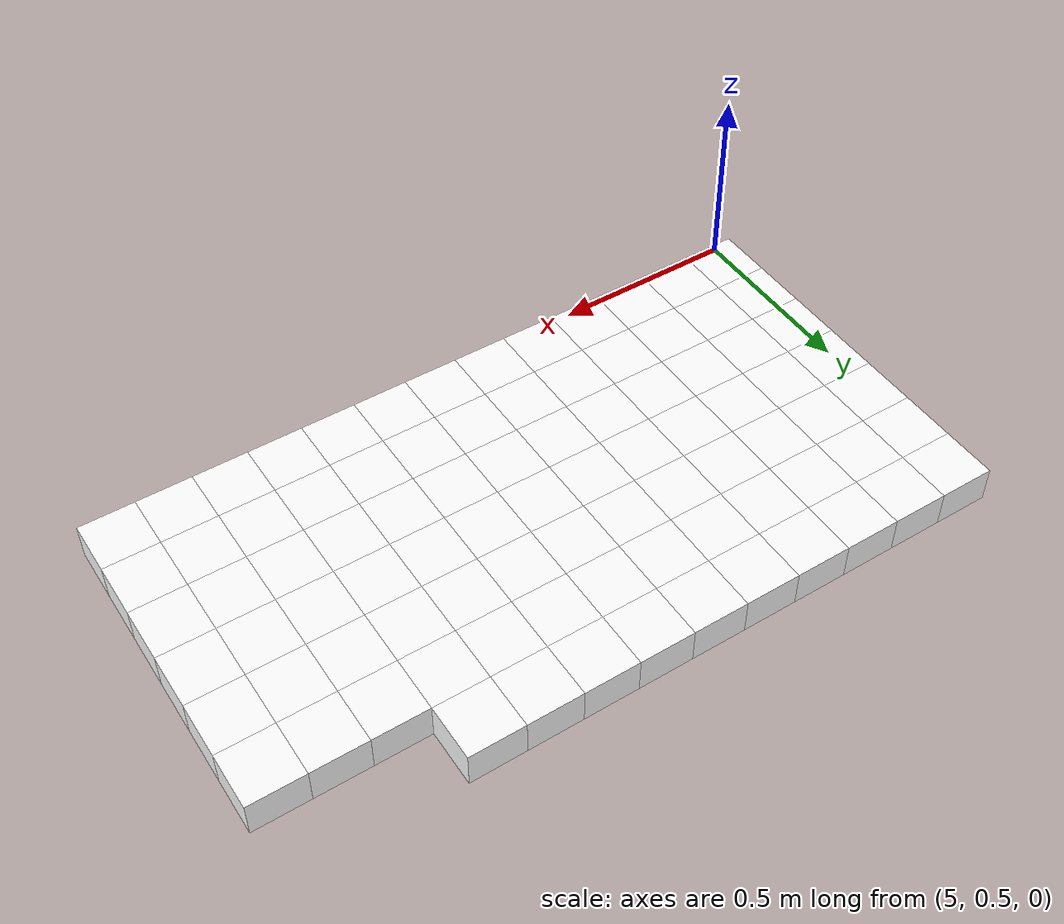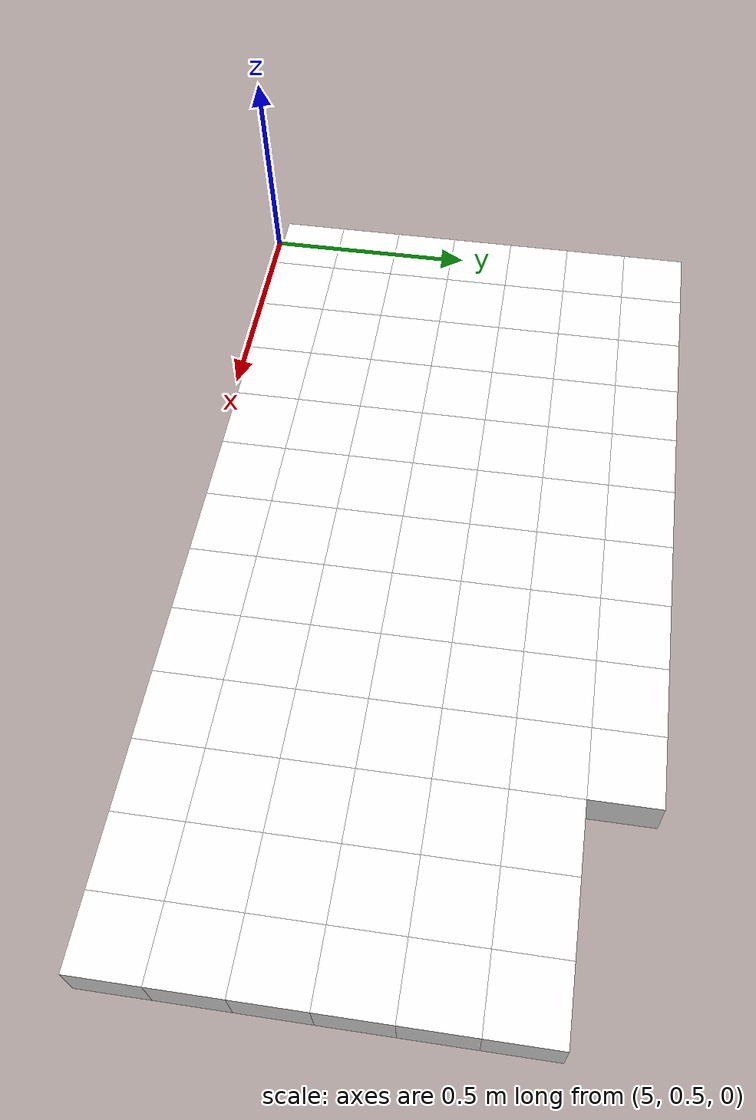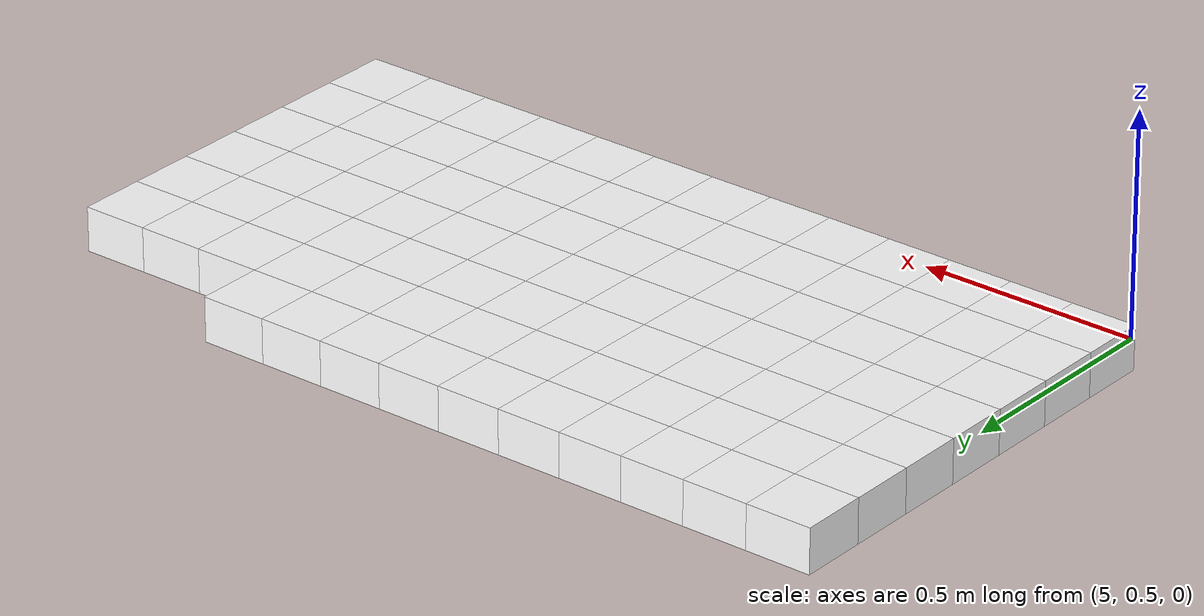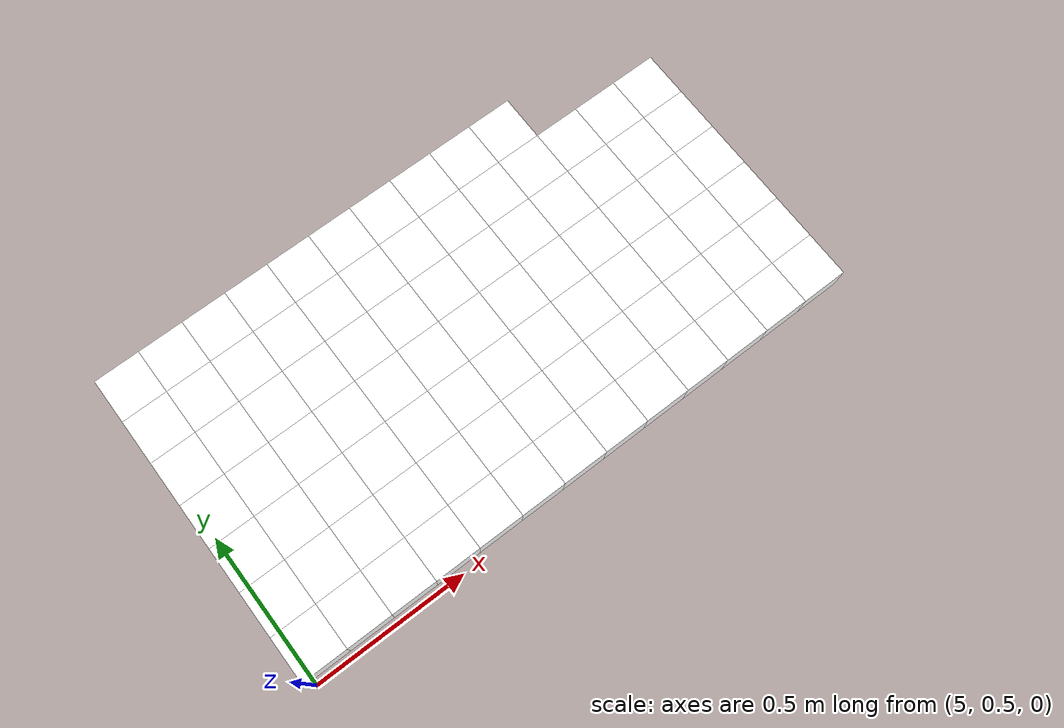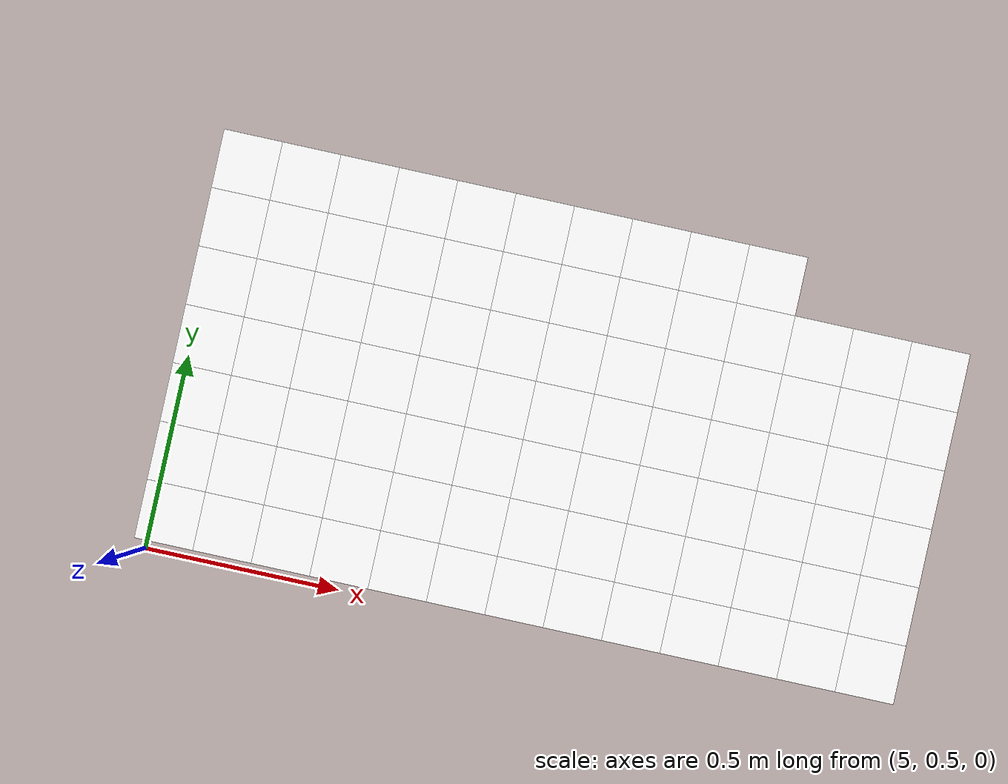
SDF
<sdf version="1.7">
 <world name="default">
  <include><uri>model://sun</uri></include>
  <model name="static_environment">
   <static>true</static>
   <link name="region_571">
    <pose>5.0500000000000025 0.6 0.0 0.0 0.0 0.0</pose>
    <collision name="region_571_collision">
     <geometry><box><size>0.15 0.15 0.1</size></box></geometry>
     <surface><friction><ode><mu>1.0</mu><mu2>1.0</mu2></ode></friction></surface>
    </collision>
    <visual name="region_571_visual">
     <geometry><box><size>0.15 0.15 0.1</size></box></geometry>
     <material><ambient>1.0 1.0 1.0 1.0</ambient><diffuse>1.0 1.0 1.0 1.0</diffuse></material>
    </visual>
   </link>
   <link name="region_572">
    <pose>5.200000000000003 0.6 0.0 0.0 0.0 0.0</pose>
    <collision name="region_572_collision">
     <geometry><box><size>0.15 0.15 0.1</size></box></geometry>
     <surface><friction><ode><mu>1.0</mu><mu2>1.0</mu2></ode></friction></surface>
    </collision>
    <visual name="region_572_visual">
     <geometry><box><size>0.15 0.15 0.1</size></box></geometry>
     <material><ambient>1.0 1.0 1.0 1.0</ambient><diffuse>1.0 1.0 1.0 1.0</diffuse></material>
    </visual>
   </link>
   <link name="region_573">
    <pose>5.350000000000003 0.6 0.0 0.0 0.0 0.0</pose>
    <collision name="region_573_collision">
     <geometry><box><size>0.15 0.15 0.1</size></box></geometry>
     <surface><friction><ode><mu>1.0</mu><mu2>1.0</mu2></ode></friction></surface>
    </collision>
    <visual name="region_573_visual">
     <geometry><box><size>0.15 0.15 0.1</size></box></geometry>
     <material><ambient>1.0 1.0 1.0 1.0</ambient><diffuse>1.0 1.0 1.0 1.0</diffuse></material>
    </visual>
   </link>
   <link name="region_574">
    <pose>5.5000000000000036 0.6 0.0 0.0 0.0 0.0</pose>
    <collision name="region_574_collision">
     <geometry><box><size>0.15 0.15 0.1</size></box></geometry>
     <surface><friction><ode><mu>1.0</mu><mu2>1.0</mu2></ode></friction></surface>
    </collision>
    <visual name="region_574_visual">
     <geometry><box><size>0.15 0.15 0.1</size></box></geometry>
     <material><ambient>1.0 1.0 1.0 1.0</ambient><diffuse>1.0 1.0 1.0 1.0</diffuse></material>
    </visual>
   </link>
   <link name="region_575">
    <pose>5.650000000000004 0.6 0.0 0.0 0.0 0.0</pose>
    <collision name="region_575_collision">
     <geometry><box><size>0.15 0.15 0.1</size></box></geometry>
     <surface><friction><ode><mu>1.0</mu><mu2>1.0</mu2></ode></friction></surface>
    </collision>
    <visual name="region_575_visual">
     <geometry><box><size>0.15 0.15 0.1</size></box></geometry>
     <material><ambient>1.0 1.0 1.0 1.0</ambient><diffuse>1.0 1.0 1.0 1.0</diffuse></material>
    </visual>
   </link>
   <link name="region_576">
    <pose>5.800000000000004 0.6 0.0 0.0 0.0 0.0</pose>
    <collision name="region_576_collision">
     <geometry><box><size>0.15 0.15 0.1</size></box></geometry>
     <surface><friction><ode><mu>1.0</mu><mu2>1.0</mu2></ode></friction></surface>
    </collision>
    <visual name="region_576_visual">
     <geometry><box><size>0.15 0.15 0.1</size></box></geometry>
     <material><ambient>1.0 1.0 1.0 1.0</ambient><diffuse>1.0 1.0 1.0 1.0</diffuse></material>
    </visual>
   </link>
   <link name="region_577">
    <pose>5.950000000000005 0.6 0.0 0.0 0.0 0.0</pose>
    <collision name="region_577_collision">
     <geometry><box><size>0.15 0.15 0.1</size></box></geometry>
     <surface><friction><ode><mu>1.0</mu><mu2>1.0</mu2></ode></friction></surface>
    </collision>
    <visual name="region_577_visual">
     <geometry><box><size>0.15 0.15 0.1</size></box></geometry>
     <material><ambient>1.0 1.0 1.0 1.0</ambient><diffuse>1.0 1.0 1.0 1.0</diffuse></material>
    </visual>
   </link>
   <link name="region_578">
    <pose>6.100000000000005 0.6 0.0 0.0 0.0 0.0</pose>
    <collision name="region_578_collision">
     <geometry><box><size>0.15 0.15 0.1</size></box></geometry>
     <surface><friction><ode><mu>1.0</mu><mu2>1.0</mu2></ode></friction></surface>
    </collision>
    <visual name="region_578_visual">
     <geometry><box><size>0.15 0.15 0.1</size></box></geometry>
     <material><ambient>1.0 1.0 1.0 1.0</ambient><diffuse>1.0 1.0 1.0 1.0</diffuse></material>
    </visual>
   </link>
   <link name="region_579">
    <pose>6.250000000000005 0.6 0.0 0.0 0.0 0.0</pose>
    <collision name="region_579_collision">
     <geometry><box><size>0.15 0.15 0.1</size></box></geometry>
     <surface><friction><ode><mu>1.0</mu><mu2>1.0</mu2></ode></friction></surface>
    </collision>
    <visual name="region_579_visual">
     <geometry><box><size>0.15 0.15 0.1</size></box></geometry>
     <material><ambient>1.0 1.0 1.0 1.0</ambient><diffuse>1.0 1.0 1.0 1.0</diffuse></material>
    </visual>
   </link>
   <link name="region_580">
    <pose>6.400000000000006 0.6 0.0 0.0 0.0 0.0</pose>
    <collision name="region_580_collision">
     <geometry><box><size>0.15 0.15 0.1</size></box></geometry>
     <surface><friction><ode><mu>1.0</mu><mu2>1.0</mu2></ode></friction></surface>
    </collision>
    <visual name="region_580_visual">
     <geometry><box><size>0.15 0.15 0.1</size></box></geometry>
     <material><ambient>1.0 1.0 1.0 1.0</ambient><diffuse>1.0 1.0 1.0 1.0</diffuse></material>
    </visual>
   </link>
   <link name="region_581">
    <pose>6.550000000000006 0.6 0.0 0.0 0.0 0.0</pose>
    <collision name="region_581_collision">
     <geometry><box><size>0.15 0.15 0.1</size></box></geometry>
     <surface><friction><ode><mu>1.0</mu><mu2>1.0</mu2></ode></friction></surface>
    </collision>
    <visual name="region_581_visual">
     <geometry><box><size>0.15 0.15 0.1</size></box></geometry>
     <material><ambient>1.0 1.0 1.0 1.0</ambient><diffuse>1.0 1.0 1.0 1.0</diffuse></material>
    </visual>
   </link>
   <link name="region_582">
    <pose>6.700000000000006 0.6 0.0 0.0 0.0 0.0</pose>
    <collision name="region_582_collision">
     <geometry><box><size>0.15 0.15 0.1</size></box></geometry>
     <surface><friction><ode><mu>1.0</mu><mu2>1.0</mu2></ode></friction></surface>
    </collision>
    <visual name="region_582_visual">
     <geometry><box><size>0.15 0.15 0.1</size></box></geometry>
     <material><ambient>1.0 1.0 1.0 1.0</ambient><diffuse>1.0 1.0 1.0 1.0</diffuse></material>
    </visual>
   </link>
   <link name="region_583">
    <pose>6.850000000000007 0.6 0.0 0.0 0.0 0.0</pose>
    <collision name="region_583_collision">
     <geometry><box><size>0.15 0.15 0.1</size></box></geometry>
     <surface><friction><ode><mu>1.0</mu><mu2>1.0</mu2></ode></friction></surface>
    </collision>
    <visual name="region_583_visual">
     <geometry><box><size>0.15 0.15 0.1</size></box></geometry>
     <material><ambient>1.0 1.0 1.0 1.0</ambient><diffuse>1.0 1.0 1.0 1.0</diffuse></material>
    </visual>
   </link>
   <link name="region_591">
    <pose>5.0500000000000025 0.75 0.0 0.0 0.0 0.0</pose>
    <collision name="region_591_collision">
     <geometry><box><size>0.15 0.15 0.1</size></box></geometry>
     <surface><friction><ode><mu>1.0</mu><mu2>1.0</mu2></ode></friction></surface>
    </collision>
    <visual name="region_591_visual">
     <geometry><box><size>0.15 0.15 0.1</size></box></geometry>
     <material><ambient>1.0 1.0 1.0 1.0</ambient><diffuse>1.0 1.0 1.0 1.0</diffuse></material>
    </visual>
   </link>
   <link name="region_592">
    <pose>5.200000000000003 0.75 0.0 0.0 0.0 0.0</pose>
    <collision name="region_592_collision">
     <geometry><box><size>0.15 0.15 0.1</size></box></geometry>
     <surface><friction><ode><mu>1.0</mu><mu2>1.0</mu2></ode></friction></surface>
    </collision>
    <visual name="region_592_visual">
     <geometry><box><size>0.15 0.15 0.1</size></box></geometry>
     <material><ambient>1.0 1.0 1.0 1.0</ambient><diffuse>1.0 1.0 1.0 1.0</diffuse></material>
    </visual>
   </link>
   <link name="region_593">
    <pose>5.350000000000003 0.75 0.0 0.0 0.0 0.0</pose>
    <collision name="region_593_collision">
     <geometry><box><size>0.15 0.15 0.1</size></box></geometry>
     <surface><friction><ode><mu>1.0</mu><mu2>1.0</mu2></ode></friction></surface>
    </collision>
    <visual name="region_593_visual">
     <geometry><box><size>0.15 0.15 0.1</size></box></geometry>
     <material><ambient>1.0 1.0 1.0 1.0</ambient><diffuse>1.0 1.0 1.0 1.0</diffuse></material>
    </visual>
   </link>
   <link name="region_594">
    <pose>5.5000000000000036 0.75 0.0 0.0 0.0 0.0</pose>
    <collision name="region_594_collision">
     <geometry><box><size>0.15 0.15 0.1</size></box></geometry>
     <surface><friction><ode><mu>1.0</mu><mu2>1.0</mu2></ode></friction></surface>
    </collision>
    <visual name="region_594_visual">
     <geometry><box><size>0.15 0.15 0.1</size></box></geometry>
     <material><ambient>1.0 1.0 1.0 1.0</ambient><diffuse>1.0 1.0 1.0 1.0</diffuse></material>
    </visual>
   </link>
   <link name="region_595">
    <pose>5.650000000000004 0.75 0.0 0.0 0.0 0.0</pose>
    <collision name="region_595_collision">
     <geometry><box><size>0.15 0.15 0.1</size></box></geometry>
     <surface><friction><ode><mu>1.0</mu><mu2>1.0</mu2></ode></friction></surface>
    </collision>
    <visual name="region_595_visual">
     <geometry><box><size>0.15 0.15 0.1</size></box></geometry>
     <material><ambient>1.0 1.0 1.0 1.0</ambient><diffuse>1.0 1.0 1.0 1.0</diffuse></material>
    </visual>
   </link>
   <link name="region_596">
    <pose>5.800000000000004 0.75 0.0 0.0 0.0 0.0</pose>
    <collision name="region_596_collision">
     <geometry><box><size>0.15 0.15 0.1</size></box></geometry>
     <surface><friction><ode><mu>1.0</mu><mu2>1.0</mu2></ode></friction></surface>
    </collision>
    <visual name="region_596_visual">
     <geometry><box><size>0.15 0.15 0.1</size></box></geometry>
     <material><ambient>1.0 1.0 1.0 1.0</ambient><diffuse>1.0 1.0 1.0 1.0</diffuse></material>
    </visual>
   </link>
   <link name="region_597">
    <pose>5.950000000000005 0.75 0.0 0.0 0.0 0.0</pose>
    <collision name="region_597_collision">
     <geometry><box><size>0.15 0.15 0.1</size></box></geometry>
     <surface><friction><ode><mu>1.0</mu><mu2>1.0</mu2></ode></friction></surface>
    </collision>
    <visual name="region_597_visual">
     <geometry><box><size>0.15 0.15 0.1</size></box></geometry>
     <material><ambient>1.0 1.0 1.0 1.0</ambient><diffuse>1.0 1.0 1.0 1.0</diffuse></material>
    </visual>
   </link>
   <link name="region_598">
    <pose>6.100000000000005 0.75 0.0 0.0 0.0 0.0</pose>
    <collision name="region_598_collision">
     <geometry><box><size>0.15 0.15 0.1</size></box></geometry>
     <surface><friction><ode><mu>1.0</mu><mu2>1.0</mu2></ode></friction></surface>
    </collision>
    <visual name="region_598_visual">
     <geometry><box><size>0.15 0.15 0.1</size></box></geometry>
     <material><ambient>1.0 1.0 1.0 1.0</ambient><diffuse>1.0 1.0 1.0 1.0</diffuse></material>
    </visual>
   </link>
   <link name="region_599">
    <pose>6.250000000000005 0.75 0.0 0.0 0.0 0.0</pose>
    <collision name="region_599_collision">
     <geometry><box><size>0.15 0.15 0.1</size></box></geometry>
     <surface><friction><ode><mu>1.0</mu><mu2>1.0</mu2></ode></friction></surface>
    </collision>
    <visual name="region_599_visual">
     <geometry><box><size>0.15 0.15 0.1</size></box></geometry>
     <material><ambient>1.0 1.0 1.0 1.0</ambient><diffuse>1.0 1.0 1.0 1.0</diffuse></material>
    </visual>
   </link>
   <link name="region_600">
    <pose>6.400000000000006 0.75 0.0 0.0 0.0 0.0</pose>
    <collision name="region_600_collision">
     <geometry><box><size>0.15 0.15 0.1</size></box></geometry>
     <surface><friction><ode><mu>1.0</mu><mu2>1.0</mu2></ode></friction></surface>
    </collision>
    <visual name="region_600_visual">
     <geometry><box><size>0.15 0.15 0.1</size></box></geometry>
     <material><ambient>1.0 1.0 1.0 1.0</ambient><diffuse>1.0 1.0 1.0 1.0</diffuse></material>
    </visual>
   </link>
   <link name="region_601">
    <pose>6.550000000000006 0.75 0.0 0.0 0.0 0.0</pose>
    <collision name="region_601_collision">
     <geometry><box><size>0.15 0.15 0.1</size></box></geometry>
     <surface><friction><ode><mu>1.0</mu><mu2>1.0</mu2></ode></friction></surface>
    </collision>
    <visual name="region_601_visual">
     <geometry><box><size>0.15 0.15 0.1</size></box></geometry>
     <material><ambient>1.0 1.0 1.0 1.0</ambient><diffuse>1.0 1.0 1.0 1.0</diffuse></material>
    </visual>
   </link>
   <link name="region_602">
    <pose>6.700000000000006 0.75 0.0 0.0 0.0 0.0</pose>
    <collision name="region_602_collision">
     <geometry><box><size>0.15 0.15 0.1</size></box></geometry>
     <surface><friction><ode><mu>1.0</mu><mu2>1.0</mu2></ode></friction></surface>
    </collision>
    <visual name="region_602_visual">
     <geometry><box><size>0.15 0.15 0.1</size></box></geometry>
     <material><ambient>1.0 1.0 1.0 1.0</ambient><diffuse>1.0 1.0 1.0 1.0</diffuse></material>
    </visual>
   </link>
   <link name="region_603">
    <pose>6.850000000000007 0.75 0.0 0.0 0.0 0.0</pose>
    <collision name="region_603_collision">
     <geometry><box><size>0.15 0.15 0.1</size></box></geometry>
     <surface><friction><ode><mu>1.0</mu><mu2>1.0</mu2></ode></friction></surface>
    </collision>
    <visual name="region_603_visual">
     <geometry><box><size>0.15 0.15 0.1</size></box></geometry>
     <material><ambient>1.0 1.0 1.0 1.0</ambient><diffuse>1.0 1.0 1.0 1.0</diffuse></material>
    </visual>
   </link>
   <link name="region_611">
    <pose>5.0500000000000025 0.8999999999999999 0.0 0.0 0.0 0.0</pose>
    <collision name="region_611_collision">
     <geometry><box><size>0.15 0.15 0.1</size></box></geometry>
     <surface><friction><ode><mu>1.0</mu><mu2>1.0</mu2></ode></friction></surface>
    </collision>
    <visual name="region_611_visual">
     <geometry><box><size>0.15 0.15 0.1</size></box></geometry>
     <material><ambient>1.0 1.0 1.0 1.0</ambient><diffuse>1.0 1.0 1.0 1.0</diffuse></material>
    </visual>
   </link>
   <link name="region_612">
    <pose>5.200000000000003 0.8999999999999999 0.0 0.0 0.0 0.0</pose>
    <collision name="region_612_collision">
     <geometry><box><size>0.15 0.15 0.1</size></box></geometry>
     <surface><friction><ode><mu>1.0</mu><mu2>1.0</mu2></ode></friction></surface>
    </collision>
    <visual name="region_612_visual">
     <geometry><box><size>0.15 0.15 0.1</size></box></geometry>
     <material><ambient>1.0 1.0 1.0 1.0</ambient><diffuse>1.0 1.0 1.0 1.0</diffuse></material>
    </visual>
   </link>
   <link name="region_613">
    <pose>5.350000000000003 0.8999999999999999 0.0 0.0 0.0 0.0</pose>
    <collision name="region_613_collision">
     <geometry><box><size>0.15 0.15 0.1</size></box></geometry>
     <surface><friction><ode><mu>1.0</mu><mu2>1.0</mu2></ode></friction></surface>
    </collision>
    <visual name="region_613_visual">
     <geometry><box><size>0.15 0.15 0.1</size></box></geometry>
     <material><ambient>1.0 1.0 1.0 1.0</ambient><diffuse>1.0 1.0 1.0 1.0</diffuse></material>
    </visual>
   </link>
   <link name="region_614">
    <pose>5.5000000000000036 0.8999999999999999 0.0 0.0 0.0 0.0</pose>
    <collision name="region_614_collision">
     <geometry><box><size>0.15 0.15 0.1</size></box></geometry>
     <surface><friction><ode><mu>1.0</mu><mu2>1.0</mu2></ode></friction></surface>
    </collision>
    <visual name="region_614_visual">
     <geometry><box><size>0.15 0.15 0.1</size></box></geometry>
     <material><ambient>1.0 1.0 1.0 1.0</ambient><diffuse>1.0 1.0 1.0 1.0</diffuse></material>
    </visual>
   </link>
   <link name="region_615">
    <pose>5.650000000000004 0.8999999999999999 0.0 0.0 0.0 0.0</pose>
    <collision name="region_615_collision">
     <geometry><box><size>0.15 0.15 0.1</size></box></geometry>
     <surface><friction><ode><mu>1.0</mu><mu2>1.0</mu2></ode></friction></surface>
    </collision>
    <visual name="region_615_visual">
     <geometry><box><size>0.15 0.15 0.1</size></box></geometry>
     <material><ambient>1.0 1.0 1.0 1.0</ambient><diffuse>1.0 1.0 1.0 1.0</diffuse></material>
    </visual>
   </link>
   <link name="region_616">
    <pose>5.800000000000004 0.8999999999999999 0.0 0.0 0.0 0.0</pose>
    <collision name="region_616_collision">
     <geometry><box><size>0.15 0.15 0.1</size></box></geometry>
     <surface><friction><ode><mu>1.0</mu><mu2>1.0</mu2></ode></friction></surface>
    </collision>
    <visual name="region_616_visual">
     <geometry><box><size>0.15 0.15 0.1</size></box></geometry>
     <material><ambient>1.0 1.0 1.0 1.0</ambient><diffuse>1.0 1.0 1.0 1.0</diffuse></material>
    </visual>
   </link>
   <link name="region_617">
    <pose>5.950000000000005 0.8999999999999999 0.0 0.0 0.0 0.0</pose>
    <collision name="region_617_collision">
     <geometry><box><size>0.15 0.15 0.1</size></box></geometry>
     <surface><friction><ode><mu>1.0</mu><mu2>1.0</mu2></ode></friction></surface>
    </collision>
    <visual name="region_617_visual">
     <geometry><box><size>0.15 0.15 0.1</size></box></geometry>
     <material><ambient>1.0 1.0 1.0 1.0</ambient><diffuse>1.0 1.0 1.0 1.0</diffuse></material>
    </visual>
   </link>
   <link name="region_618">
    <pose>6.100000000000005 0.8999999999999999 0.0 0.0 0.0 0.0</pose>
    <collision name="region_618_collision">
     <geometry><box><size>0.15 0.15 0.1</size></box></geometry>
     <surface><friction><ode><mu>1.0</mu><mu2>1.0</mu2></ode></friction></surface>
    </collision>
    <visual name="region_618_visual">
     <geometry><box><size>0.15 0.15 0.1</size></box></geometry>
     <material><ambient>1.0 1.0 1.0 1.0</ambient><diffuse>1.0 1.0 1.0 1.0</diffuse></material>
    </visual>
   </link>
   <link name="region_619">
    <pose>6.250000000000005 0.8999999999999999 0.0 0.0 0.0 0.0</pose>
    <collision name="region_619_collision">
     <geometry><box><size>0.15 0.15 0.1</size></box></geometry>
     <surface><friction><ode><mu>1.0</mu><mu2>1.0</mu2></ode></friction></surface>
    </collision>
    <visual name="region_619_visual">
     <geometry><box><size>0.15 0.15 0.1</size></box></geometry>
     <material><ambient>1.0 1.0 1.0 1.0</ambient><diffuse>1.0 1.0 1.0 1.0</diffuse></material>
    </visual>
   </link>
   <link name="region_620">
    <pose>6.400000000000006 0.8999999999999999 0.0 0.0 0.0 0.0</pose>
    <collision name="region_620_collision">
     <geometry><box><size>0.15 0.15 0.1</size></box></geometry>
     <surface><friction><ode><mu>1.0</mu><mu2>1.0</mu2></ode></friction></surface>
    </collision>
    <visual name="region_620_visual">
     <geometry><box><size>0.15 0.15 0.1</size></box></geometry>
     <material><ambient>1.0 1.0 1.0 1.0</ambient><diffuse>1.0 1.0 1.0 1.0</diffuse></material>
    </visual>
   </link>
   <link name="region_621">
    <pose>6.550000000000006 0.8999999999999999 0.0 0.0 0.0 0.0</pose>
    <collision name="region_621_collision">
     <geometry><box><size>0.15 0.15 0.1</size></box></geometry>
     <surface><friction><ode><mu>1.0</mu><mu2>1.0</mu2></ode></friction></surface>
    </collision>
    <visual name="region_621_visual">
     <geometry><box><size>0.15 0.15 0.1</size></box></geometry>
     <material><ambient>1.0 1.0 1.0 1.0</ambient><diffuse>1.0 1.0 1.0 1.0</diffuse></material>
    </visual>
   </link>
   <link name="region_622">
    <pose>6.700000000000006 0.8999999999999999 0.0 0.0 0.0 0.0</pose>
    <collision name="region_622_collision">
     <geometry><box><size>0.15 0.15 0.1</size></box></geometry>
     <surface><friction><ode><mu>1.0</mu><mu2>1.0</mu2></ode></friction></surface>
    </collision>
    <visual name="region_622_visual">
     <geometry><box><size>0.15 0.15 0.1</size></box></geometry>
     <material><ambient>1.0 1.0 1.0 1.0</ambient><diffuse>1.0 1.0 1.0 1.0</diffuse></material>
    </visual>
   </link>
   <link name="region_623">
    <pose>6.850000000000007 0.8999999999999999 0.0 0.0 0.0 0.0</pose>
    <collision name="region_623_collision">
     <geometry><box><size>0.15 0.15 0.1</size></box></geometry>
     <surface><friction><ode><mu>1.0</mu><mu2>1.0</mu2></ode></friction></surface>
    </collision>
    <visual name="region_623_visual">
     <geometry><box><size>0.15 0.15 0.1</size></box></geometry>
     <material><ambient>1.0 1.0 1.0 1.0</ambient><diffuse>1.0 1.0 1.0 1.0</diffuse></material>
    </visual>
   </link>
   <link name="region_631">
    <pose>5.0500000000000025 1.0499999999999998 0.0 0.0 0.0 0.0</pose>
    <collision name="region_631_collision">
     <geometry><box><size>0.15 0.15 0.1</size></box></geometry>
     <surface><friction><ode><mu>1.0</mu><mu2>1.0</mu2></ode></friction></surface>
    </collision>
    <visual name="region_631_visual">
     <geometry><box><size>0.15 0.15 0.1</size></box></geometry>
     <material><ambient>1.0 1.0 1.0 1.0</ambient><diffuse>1.0 1.0 1.0 1.0</diffuse></material>
    </visual>
   </link>
   <link name="region_632">
    <pose>5.200000000000003 1.0499999999999998 0.0 0.0 0.0 0.0</pose>
    <collision name="region_632_collision">
     <geometry><box><size>0.15 0.15 0.1</size></box></geometry>
     <surface><friction><ode><mu>1.0</mu><mu2>1.0</mu2></ode></friction></surface>
    </collision>
    <visual name="region_632_visual">
     <geometry><box><size>0.15 0.15 0.1</size></box></geometry>
     <material><ambient>1.0 1.0 1.0 1.0</ambient><diffuse>1.0 1.0 1.0 1.0</diffuse></material>
    </visual>
   </link>
   <link name="region_633">
    <pose>5.350000000000003 1.0499999999999998 0.0 0.0 0.0 0.0</pose>
    <collision name="region_633_collision">
     <geometry><box><size>0.15 0.15 0.1</size></box></geometry>
     <surface><friction><ode><mu>1.0</mu><mu2>1.0</mu2></ode></friction></surface>
    </collision>
    <visual name="region_633_visual">
     <geometry><box><size>0.15 0.15 0.1</size></box></geometry>
     <material><ambient>1.0 1.0 1.0 1.0</ambient><diffuse>1.0 1.0 1.0 1.0</diffuse></material>
    </visual>
   </link>
   <link name="region_634">
    <pose>5.5000000000000036 1.0499999999999998 0.0 0.0 0.0 0.0</pose>
    <collision name="region_634_collision">
     <geometry><box><size>0.15 0.15 0.1</size></box></geometry>
     <surface><friction><ode><mu>1.0</mu><mu2>1.0</mu2></ode></friction></surface>
    </collision>
    <visual name="region_634_visual">
     <geometry><box><size>0.15 0.15 0.1</size></box></geometry>
     <material><ambient>1.0 1.0 1.0 1.0</ambient><diffuse>1.0 1.0 1.0 1.0</diffuse></material>
    </visual>
   </link>
   <link name="region_635">
    <pose>5.650000000000004 1.0499999999999998 0.0 0.0 0.0 0.0</pose>
    <collision name="region_635_collision">
     <geometry><box><size>0.15 0.15 0.1</size></box></geometry>
     <surface><friction><ode><mu>1.0</mu><mu2>1.0</mu2></ode></friction></surface>
    </collision>
    <visual name="region_635_visual">
     <geometry><box><size>0.15 0.15 0.1</size></box></geometry>
     <material><ambient>1.0 1.0 1.0 1.0</ambient><diffuse>1.0 1.0 1.0 1.0</diffuse></material>
    </visual>
   </link>
   <link name="region_636">
    <pose>5.800000000000004 1.0499999999999998 0.0 0.0 0.0 0.0</pose>
    <collision name="region_636_collision">
     <geometry><box><size>0.15 0.15 0.1</size></box></geometry>
     <surface><friction><ode><mu>1.0</mu><mu2>1.0</mu2></ode></friction></surface>
    </collision>
    <visual name="region_636_visual">
     <geometry><box><size>0.15 0.15 0.1</size></box></geometry>
     <material><ambient>1.0 1.0 1.0 1.0</ambient><diffuse>1.0 1.0 1.0 1.0</diffuse></material>
    </visual>
   </link>
   <link name="region_637">
    <pose>5.950000000000005 1.0499999999999998 0.0 0.0 0.0 0.0</pose>
    <collision name="region_637_collision">
     <geometry><box><size>0.15 0.15 0.1</size></box></geometry>
     <surface><friction><ode><mu>1.0</mu><mu2>1.0</mu2></ode></friction></surface>
    </collision>
    <visual name="region_637_visual">
     <geometry><box><size>0.15 0.15 0.1</size></box></geometry>
     <material><ambient>1.0 1.0 1.0 1.0</ambient><diffuse>1.0 1.0 1.0 1.0</diffuse></material>
    </visual>
   </link>
   <link name="region_638">
    <pose>6.100000000000005 1.0499999999999998 0.0 0.0 0.0 0.0</pose>
    <collision name="region_638_collision">
     <geometry><box><size>0.15 0.15 0.1</size></box></geometry>
     <surface><friction><ode><mu>1.0</mu><mu2>1.0</mu2></ode></friction></surface>
    </collision>
    <visual name="region_638_visual">
     <geometry><box><size>0.15 0.15 0.1</size></box></geometry>
     <material><ambient>1.0 1.0 1.0 1.0</ambient><diffuse>1.0 1.0 1.0 1.0</diffuse></material>
    </visual>
   </link>
   <link name="region_639">
    <pose>6.250000000000005 1.0499999999999998 0.0 0.0 0.0 0.0</pose>
    <collision name="region_639_collision">
     <geometry><box><size>0.15 0.15 0.1</size></box></geometry>
     <surface><friction><ode><mu>1.0</mu><mu2>1.0</mu2></ode></friction></surface>
    </collision>
    <visual name="region_639_visual">
     <geometry><box><size>0.15 0.15 0.1</size></box></geometry>
     <material><ambient>1.0 1.0 1.0 1.0</ambient><diffuse>1.0 1.0 1.0 1.0</diffuse></material>
    </visual>
   </link>
   <link name="region_640">
    <pose>6.400000000000006 1.0499999999999998 0.0 0.0 0.0 0.0</pose>
    <collision name="region_640_collision">
     <geometry><box><size>0.15 0.15 0.1</size></box></geometry>
     <surface><friction><ode><mu>1.0</mu><mu2>1.0</mu2></ode></friction></surface>
    </collision>
    <visual name="region_640_visual">
     <geometry><box><size>0.15 0.15 0.1</size></box></geometry>
     <material><ambient>1.0 1.0 1.0 1.0</ambient><diffuse>1.0 1.0 1.0 1.0</diffuse></material>
    </visual>
   </link>
   <link name="region_641">
    <pose>6.550000000000006 1.0499999999999998 0.0 0.0 0.0 0.0</pose>
    <collision name="region_641_collision">
     <geometry><box><size>0.15 0.15 0.1</size></box></geometry>
     <surface><friction><ode><mu>1.0</mu><mu2>1.0</mu2></ode></friction></surface>
    </collision>
    <visual name="region_641_visual">
     <geometry><box><size>0.15 0.15 0.1</size></box></geometry>
     <material><ambient>1.0 1.0 1.0 1.0</ambient><diffuse>1.0 1.0 1.0 1.0</diffuse></material>
    </visual>
   </link>
   <link name="region_642">
    <pose>6.700000000000006 1.0499999999999998 0.0 0.0 0.0 0.0</pose>
    <collision name="region_642_collision">
     <geometry><box><size>0.15 0.15 0.1</size></box></geometry>
     <surface><friction><ode><mu>1.0</mu><mu2>1.0</mu2></ode></friction></surface>
    </collision>
    <visual name="region_642_visual">
     <geometry><box><size>0.15 0.15 0.1</size></box></geometry>
     <material><ambient>1.0 1.0 1.0 1.0</ambient><diffuse>1.0 1.0 1.0 1.0</diffuse></material>
    </visual>
   </link>
   <link name="region_643">
    <pose>6.850000000000007 1.0499999999999998 0.0 0.0 0.0 0.0</pose>
    <collision name="region_643_collision">
     <geometry><box><size>0.15 0.15 0.1</size></box></geometry>
     <surface><friction><ode><mu>1.0</mu><mu2>1.0</mu2></ode></friction></surface>
    </collision>
    <visual name="region_643_visual">
     <geometry><box><size>0.15 0.15 0.1</size></box></geometry>
     <material><ambient>1.0 1.0 1.0 1.0</ambient><diffuse>1.0 1.0 1.0 1.0</diffuse></material>
    </visual>
   </link>
   <link name="region_651">
    <pose>5.0500000000000025 1.2 0.0 0.0 0.0 0.0</pose>
    <collision name="region_651_collision">
     <geometry><box><size>0.15 0.15 0.1</size></box></geometry>
     <surface><friction><ode><mu>1.0</mu><mu2>1.0</mu2></ode></friction></surface>
    </collision>
    <visual name="region_651_visual">
     <geometry><box><size>0.15 0.15 0.1</size></box></geometry>
     <material><ambient>1.0 1.0 1.0 1.0</ambient><diffuse>1.0 1.0 1.0 1.0</diffuse></material>
    </visual>
   </link>
   <link name="region_652">
    <pose>5.200000000000003 1.2 0.0 0.0 0.0 0.0</pose>
    <collision name="region_652_collision">
     <geometry><box><size>0.15 0.15 0.1</size></box></geometry>
     <surface><friction><ode><mu>1.0</mu><mu2>1.0</mu2></ode></friction></surface>
    </collision>
    <visual name="region_652_visual">
     <geometry><box><size>0.15 0.15 0.1</size></box></geometry>
     <material><ambient>1.0 1.0 1.0 1.0</ambient><diffuse>1.0 1.0 1.0 1.0</diffuse></material>
    </visual>
   </link>
   <link name="region_653">
    <pose>5.350000000000003 1.2 0.0 0.0 0.0 0.0</pose>
    <collision name="region_653_collision">
     <geometry><box><size>0.15 0.15 0.1</size></box></geometry>
     <surface><friction><ode><mu>1.0</mu><mu2>1.0</mu2></ode></friction></surface>
    </collision>
    <visual name="region_653_visual">
     <geometry><box><size>0.15 0.15 0.1</size></box></geometry>
     <material><ambient>1.0 1.0 1.0 1.0</ambient><diffuse>1.0 1.0 1.0 1.0</diffuse></material>
    </visual>
   </link>
   <link name="region_654">
    <pose>5.5000000000000036 1.2 0.0 0.0 0.0 0.0</pose>
    <collision name="region_654_collision">
     <geometry><box><size>0.15 0.15 0.1</size></box></geometry>
     <surface><friction><ode><mu>1.0</mu><mu2>1.0</mu2></ode></friction></surface>
    </collision>
    <visual name="region_654_visual">
     <geometry><box><size>0.15 0.15 0.1</size></box></geometry>
     <material><ambient>1.0 1.0 1.0 1.0</ambient><diffuse>1.0 1.0 1.0 1.0</diffuse></material>
    </visual>
   </link>
   <link name="region_655">
    <pose>5.650000000000004 1.2 0.0 0.0 0.0 0.0</pose>
    <collision name="region_655_collision">
     <geometry><box><size>0.15 0.15 0.1</size></box></geometry>
     <surface><friction><ode><mu>1.0</mu><mu2>1.0</mu2></ode></friction></surface>
    </collision>
    <visual name="region_655_visual">
     <geometry><box><size>0.15 0.15 0.1</size></box></geometry>
     <material><ambient>1.0 1.0 1.0 1.0</ambient><diffuse>1.0 1.0 1.0 1.0</diffuse></material>
    </visual>
   </link>
   <link name="region_656">
    <pose>5.800000000000004 1.2 0.0 0.0 0.0 0.0</pose>
    <collision name="region_656_collision">
     <geometry><box><size>0.15 0.15 0.1</size></box></geometry>
     <surface><friction><ode><mu>1.0</mu><mu2>1.0</mu2></ode></friction></surface>
    </collision>
    <visual name="region_656_visual">
     <geometry><box><size>0.15 0.15 0.1</size></box></geometry>
     <material><ambient>1.0 1.0 1.0 1.0</ambient><diffuse>1.0 1.0 1.0 1.0</diffuse></material>
    </visual>
   </link>
   <link name="region_657">
    <pose>5.950000000000005 1.2 0.0 0.0 0.0 0.0</pose>
    <collision name="region_657_collision">
     <geometry><box><size>0.15 0.15 0.1</size></box></geometry>
     <surface><friction><ode><mu>1.0</mu><mu2>1.0</mu2></ode></friction></surface>
    </collision>
    <visual name="region_657_visual">
     <geometry><box><size>0.15 0.15 0.1</size></box></geometry>
     <material><ambient>1.0 1.0 1.0 1.0</ambient><diffuse>1.0 1.0 1.0 1.0</diffuse></material>
    </visual>
   </link>
   <link name="region_658">
    <pose>6.100000000000005 1.2 0.0 0.0 0.0 0.0</pose>
    <collision name="region_658_collision">
     <geometry><box><size>0.15 0.15 0.1</size></box></geometry>
     <surface><friction><ode><mu>1.0</mu><mu2>1.0</mu2></ode></friction></surface>
    </collision>
    <visual name="region_658_visual">
     <geometry><box><size>0.15 0.15 0.1</size></box></geometry>
     <material><ambient>1.0 1.0 1.0 1.0</ambient><diffuse>1.0 1.0 1.0 1.0</diffuse></material>
    </visual>
   </link>
   <link name="region_659">
    <pose>6.250000000000005 1.2 0.0 0.0 0.0 0.0</pose>
    <collision name="region_659_collision">
     <geometry><box><size>0.15 0.15 0.1</size></box></geometry>
     <surface><friction><ode><mu>1.0</mu><mu2>1.0</mu2></ode></friction></surface>
    </collision>
    <visual name="region_659_visual">
     <geometry><box><size>0.15 0.15 0.1</size></box></geometry>
     <material><ambient>1.0 1.0 1.0 1.0</ambient><diffuse>1.0 1.0 1.0 1.0</diffuse></material>
    </visual>
   </link>
   <link name="region_660">
    <pose>6.400000000000006 1.2 0.0 0.0 0.0 0.0</pose>
    <collision name="region_660_collision">
     <geometry><box><size>0.15 0.15 0.1</size></box></geometry>
     <surface><friction><ode><mu>1.0</mu><mu2>1.0</mu2></ode></friction></surface>
    </collision>
    <visual name="region_660_visual">
     <geometry><box><size>0.15 0.15 0.1</size></box></geometry>
     <material><ambient>1.0 1.0 1.0 1.0</ambient><diffuse>1.0 1.0 1.0 1.0</diffuse></material>
    </visual>
   </link>
   <link name="region_661">
    <pose>6.550000000000006 1.2 0.0 0.0 0.0 0.0</pose>
    <collision name="region_661_collision">
     <geometry><box><size>0.15 0.15 0.1</size></box></geometry>
     <surface><friction><ode><mu>1.0</mu><mu2>1.0</mu2></ode></friction></surface>
    </collision>
    <visual name="region_661_visual">
     <geometry><box><size>0.15 0.15 0.1</size></box></geometry>
     <material><ambient>1.0 1.0 1.0 1.0</ambient><diffuse>1.0 1.0 1.0 1.0</diffuse></material>
    </visual>
   </link>
   <link name="region_662">
    <pose>6.700000000000006 1.2 0.0 0.0 0.0 0.0</pose>
    <collision name="region_662_collision">
     <geometry><box><size>0.15 0.15 0.1</size></box></geometry>
     <surface><friction><ode><mu>1.0</mu><mu2>1.0</mu2></ode></friction></surface>
    </collision>
    <visual name="region_662_visual">
     <geometry><box><size>0.15 0.15 0.1</size></box></geometry>
     <material><ambient>1.0 1.0 1.0 1.0</ambient><diffuse>1.0 1.0 1.0 1.0</diffuse></material>
    </visual>
   </link>
   <link name="region_663">
    <pose>6.850000000000007 1.2 0.0 0.0 0.0 0.0</pose>
    <collision name="region_663_collision">
     <geometry><box><size>0.15 0.15 0.1</size></box></geometry>
     <surface><friction><ode><mu>1.0</mu><mu2>1.0</mu2></ode></friction></surface>
    </collision>
    <visual name="region_663_visual">
     <geometry><box><size>0.15 0.15 0.1</size></box></geometry>
     <material><ambient>1.0 1.0 1.0 1.0</ambient><diffuse>1.0 1.0 1.0 1.0</diffuse></material>
    </visual>
   </link>
   <link name="region_671">
    <pose>5.0500000000000025 1.35 0.0 0.0 0.0 0.0</pose>
    <collision name="region_671_collision">
     <geometry><box><size>0.15 0.15 0.1</size></box></geometry>
     <surface><friction><ode><mu>1.0</mu><mu2>1.0</mu2></ode></friction></surface>
    </collision>
    <visual name="region_671_visual">
     <geometry><box><size>0.15 0.15 0.1</size></box></geometry>
     <material><ambient>1.0 1.0 1.0 1.0</ambient><diffuse>1.0 1.0 1.0 1.0</diffuse></material>
    </visual>
   </link>
   <link name="region_672">
    <pose>5.200000000000003 1.35 0.0 0.0 0.0 0.0</pose>
    <collision name="region_672_collision">
     <geometry><box><size>0.15 0.15 0.1</size></box></geometry>
     <surface><friction><ode><mu>1.0</mu><mu2>1.0</mu2></ode></friction></surface>
    </collision>
    <visual name="region_672_visual">
     <geometry><box><size>0.15 0.15 0.1</size></box></geometry>
     <material><ambient>1.0 1.0 1.0 1.0</ambient><diffuse>1.0 1.0 1.0 1.0</diffuse></material>
    </visual>
   </link>
   <link name="region_673">
    <pose>5.350000000000003 1.35 0.0 0.0 0.0 0.0</pose>
    <collision name="region_673_collision">
     <geometry><box><size>0.15 0.15 0.1</size></box></geometry>
     <surface><friction><ode><mu>1.0</mu><mu2>1.0</mu2></ode></friction></surface>
    </collision>
    <visual name="region_673_visual">
     <geometry><box><size>0.15 0.15 0.1</size></box></geometry>
     <material><ambient>1.0 1.0 1.0 1.0</ambient><diffuse>1.0 1.0 1.0 1.0</diffuse></material>
    </visual>
   </link>
   <link name="region_674">
    <pose>5.5000000000000036 1.35 0.0 0.0 0.0 0.0</pose>
    <collision name="region_674_collision">
     <geometry><box><size>0.15 0.15 0.1</size></box></geometry>
     <surface><friction><ode><mu>1.0</mu><mu2>1.0</mu2></ode></friction></surface>
    </collision>
    <visual name="region_674_visual">
     <geometry><box><size>0.15 0.15 0.1</size></box></geometry>
     <material><ambient>1.0 1.0 1.0 1.0</ambient><diffuse>1.0 1.0 1.0 1.0</diffuse></material>
    </visual>
   </link>
   <link name="region_675">
    <pose>5.650000000000004 1.35 0.0 0.0 0.0 0.0</pose>
    <collision name="region_675_collision">
     <geometry><box><size>0.15 0.15 0.1</size></box></geometry>
     <surface><friction><ode><mu>1.0</mu><mu2>1.0</mu2></ode></friction></surface>
    </collision>
    <visual name="region_675_visual">
     <geometry><box><size>0.15 0.15 0.1</size></box></geometry>
     <material><ambient>1.0 1.0 1.0 1.0</ambient><diffuse>1.0 1.0 1.0 1.0</diffuse></material>
    </visual>
   </link>
   <link name="region_676">
    <pose>5.800000000000004 1.35 0.0 0.0 0.0 0.0</pose>
    <collision name="region_676_collision">
     <geometry><box><size>0.15 0.15 0.1</size></box></geometry>
     <surface><friction><ode><mu>1.0</mu><mu2>1.0</mu2></ode></friction></surface>
    </collision>
    <visual name="region_676_visual">
     <geometry><box><size>0.15 0.15 0.1</size></box></geometry>
     <material><ambient>1.0 1.0 1.0 1.0</ambient><diffuse>1.0 1.0 1.0 1.0</diffuse></material>
    </visual>
   </link>
   <link name="region_677">
    <pose>5.950000000000005 1.35 0.0 0.0 0.0 0.0</pose>
    <collision name="region_677_collision">
     <geometry><box><size>0.15 0.15 0.1</size></box></geometry>
     <surface><friction><ode><mu>1.0</mu><mu2>1.0</mu2></ode></friction></surface>
    </collision>
    <visual name="region_677_visual">
     <geometry><box><size>0.15 0.15 0.1</size></box></geometry>
     <material><ambient>1.0 1.0 1.0 1.0</ambient><diffuse>1.0 1.0 1.0 1.0</diffuse></material>
    </visual>
   </link>
   <link name="region_678">
    <pose>6.100000000000005 1.35 0.0 0.0 0.0 0.0</pose>
    <collision name="region_678_collision">
     <geometry><box><size>0.15 0.15 0.1</size></box></geometry>
     <surface><friction><ode><mu>1.0</mu><mu2>1.0</mu2></ode></friction></surface>
    </collision>
    <visual name="region_678_visual">
     <geometry><box><size>0.15 0.15 0.1</size></box></geometry>
     <material><ambient>1.0 1.0 1.0 1.0</ambient><diffuse>1.0 1.0 1.0 1.0</diffuse></material>
    </visual>
   </link>
   <link name="region_679">
    <pose>6.250000000000005 1.35 0.0 0.0 0.0 0.0</pose>
    <collision name="region_679_collision">
     <geometry><box><size>0.15 0.15 0.1</size></box></geometry>
     <surface><friction><ode><mu>1.0</mu><mu2>1.0</mu2></ode></friction></surface>
    </collision>
    <visual name="region_679_visual">
     <geometry><box><size>0.15 0.15 0.1</size></box></geometry>
     <material><ambient>1.0 1.0 1.0 1.0</ambient><diffuse>1.0 1.0 1.0 1.0</diffuse></material>
    </visual>
   </link>
   <link name="region_680">
    <pose>6.400000000000006 1.35 0.0 0.0 0.0 0.0</pose>
    <collision name="region_680_collision">
     <geometry><box><size>0.15 0.15 0.1</size></box></geometry>
     <surface><friction><ode><mu>1.0</mu><mu2>1.0</mu2></ode></friction></surface>
    </collision>
    <visual name="region_680_visual">
     <geometry><box><size>0.15 0.15 0.1</size></box></geometry>
     <material><ambient>1.0 1.0 1.0 1.0</ambient><diffuse>1.0 1.0 1.0 1.0</diffuse></material>
    </visual>
   </link>
   <link name="region_681">
    <pose>6.550000000000006 1.35 0.0 0.0 0.0 0.0</pose>
    <collision name="region_681_collision">
     <geometry><box><size>0.15 0.15 0.1</size></box></geometry>
     <surface><friction><ode><mu>1.0</mu><mu2>1.0</mu2></ode></friction></surface>
    </collision>
    <visual name="region_681_visual">
     <geometry><box><size>0.15 0.15 0.1</size></box></geometry>
     <material><ambient>1.0 1.0 1.0 1.0</ambient><diffuse>1.0 1.0 1.0 1.0</diffuse></material>
    </visual>
   </link>
   <link name="region_682">
    <pose>6.700000000000006 1.35 0.0 0.0 0.0 0.0</pose>
    <collision name="region_682_collision">
     <geometry><box><size>0.15 0.15 0.1</size></box></geometry>
     <surface><friction><ode><mu>1.0</mu><mu2>1.0</mu2></ode></friction></surface>
    </collision>
    <visual name="region_682_visual">
     <geometry><box><size>0.15 0.15 0.1</size></box></geometry>
     <material><ambient>1.0 1.0 1.0 1.0</ambient><diffuse>1.0 1.0 1.0 1.0</diffuse></material>
    </visual>
   </link>
   <link name="region_683">
    <pose>6.850000000000007 1.35 0.0 0.0 0.0 0.0</pose>
    <collision name="region_683_collision">
     <geometry><box><size>0.15 0.15 0.1</size></box></geometry>
     <surface><friction><ode><mu>1.0</mu><mu2>1.0</mu2></ode></friction></surface>
    </collision>
    <visual name="region_683_visual">
     <geometry><box><size>0.15 0.15 0.1</size></box></geometry>
     <material><ambient>1.0 1.0 1.0 1.0</ambient><diffuse>1.0 1.0 1.0 1.0</diffuse></material>
    </visual>
   </link>
   <link name="region_691">
    <pose>5.0500000000000025 1.5 0.0 0.0 0.0 0.0</pose>
    <collision name="region_691_collision">
     <geometry><box><size>0.15 0.15 0.1</size></box></geometry>
     <surface><friction><ode><mu>1.0</mu><mu2>1.0</mu2></ode></friction></surface>
    </collision>
    <visual name="region_691_visual">
     <geometry><box><size>0.15 0.15 0.1</size></box></geometry>
     <material><ambient>1.0 1.0 1.0 1.0</ambient><diffuse>1.0 1.0 1.0 1.0</diffuse></material>
    </visual>
   </link>
   <link name="region_692">
    <pose>5.200000000000003 1.5 0.0 0.0 0.0 0.0</pose>
    <collision name="region_692_collision">
     <geometry><box><size>0.15 0.15 0.1</size></box></geometry>
     <surface><friction><ode><mu>1.0</mu><mu2>1.0</mu2></ode></friction></surface>
    </collision>
    <visual name="region_692_visual">
     <geometry><box><size>0.15 0.15 0.1</size></box></geometry>
     <material><ambient>1.0 1.0 1.0 1.0</ambient><diffuse>1.0 1.0 1.0 1.0</diffuse></material>
    </visual>
   </link>
   <link name="region_693">
    <pose>5.350000000000003 1.5 0.0 0.0 0.0 0.0</pose>
    <collision name="region_693_collision">
     <geometry><box><size>0.15 0.15 0.1</size></box></geometry>
     <surface><friction><ode><mu>1.0</mu><mu2>1.0</mu2></ode></friction></surface>
    </collision>
    <visual name="region_693_visual">
     <geometry><box><size>0.15 0.15 0.1</size></box></geometry>
     <material><ambient>1.0 1.0 1.0 1.0</ambient><diffuse>1.0 1.0 1.0 1.0</diffuse></material>
    </visual>
   </link>
   <link name="region_694">
    <pose>5.5000000000000036 1.5 0.0 0.0 0.0 0.0</pose>
    <collision name="region_694_collision">
     <geometry><box><size>0.15 0.15 0.1</size></box></geometry>
     <surface><friction><ode><mu>1.0</mu><mu2>1.0</mu2></ode></friction></surface>
    </collision>
    <visual name="region_694_visual">
     <geometry><box><size>0.15 0.15 0.1</size></box></geometry>
     <material><ambient>1.0 1.0 1.0 1.0</ambient><diffuse>1.0 1.0 1.0 1.0</diffuse></material>
    </visual>
   </link>
   <link name="region_695">
    <pose>5.650000000000004 1.5 0.0 0.0 0.0 0.0</pose>
    <collision name="region_695_collision">
     <geometry><box><size>0.15 0.15 0.1</size></box></geometry>
     <surface><friction><ode><mu>1.0</mu><mu2>1.0</mu2></ode></friction></surface>
    </collision>
    <visual name="region_695_visual">
     <geometry><box><size>0.15 0.15 0.1</size></box></geometry>
     <material><ambient>1.0 1.0 1.0 1.0</ambient><diffuse>1.0 1.0 1.0 1.0</diffuse></material>
    </visual>
   </link>
   <link name="region_696">
    <pose>5.800000000000004 1.5 0.0 0.0 0.0 0.0</pose>
    <collision name="region_696_collision">
     <geometry><box><size>0.15 0.15 0.1</size></box></geometry>
     <surface><friction><ode><mu>1.0</mu><mu2>1.0</mu2></ode></friction></surface>
    </collision>
    <visual name="region_696_visual">
     <geometry><box><size>0.15 0.15 0.1</size></box></geometry>
     <material><ambient>1.0 1.0 1.0 1.0</ambient><diffuse>1.0 1.0 1.0 1.0</diffuse></material>
    </visual>
   </link>
   <link name="region_697">
    <pose>5.950000000000005 1.5 0.0 0.0 0.0 0.0</pose>
    <collision name="region_697_collision">
     <geometry><box><size>0.15 0.15 0.1</size></box></geometry>
     <surface><friction><ode><mu>1.0</mu><mu2>1.0</mu2></ode></friction></surface>
    </collision>
    <visual name="region_697_visual">
     <geometry><box><size>0.15 0.15 0.1</size></box></geometry>
     <material><ambient>1.0 1.0 1.0 1.0</ambient><diffuse>1.0 1.0 1.0 1.0</diffuse></material>
    </visual>
   </link>
   <link name="region_698">
    <pose>6.100000000000005 1.5 0.0 0.0 0.0 0.0</pose>
    <collision name="region_698_collision">
     <geometry><box><size>0.15 0.15 0.1</size></box></geometry>
     <surface><friction><ode><mu>1.0</mu><mu2>1.0</mu2></ode></friction></surface>
    </collision>
    <visual name="region_698_visual">
     <geometry><box><size>0.15 0.15 0.1</size></box></geometry>
     <material><ambient>1.0 1.0 1.0 1.0</ambient><diffuse>1.0 1.0 1.0 1.0</diffuse></material>
    </visual>
   </link>
   <link name="region_699">
    <pose>6.250000000000005 1.5 0.0 0.0 0.0 0.0</pose>
    <collision name="region_699_collision">
     <geometry><box><size>0.15 0.15 0.1</size></box></geometry>
     <surface><friction><ode><mu>1.0</mu><mu2>1.0</mu2></ode></friction></surface>
    </collision>
    <visual name="region_699_visual">
     <geometry><box><size>0.15 0.15 0.1</size></box></geometry>
     <material><ambient>1.0 1.0 1.0 1.0</ambient><diffuse>1.0 1.0 1.0 1.0</diffuse></material>
    </visual>
   </link>
   <link name="region_700">
    <pose>6.400000000000006 1.5 0.0 0.0 0.0 0.0</pose>
    <collision name="region_700_collision">
     <geometry><box><size>0.15 0.15 0.1</size></box></geometry>
     <surface><friction><ode><mu>1.0</mu><mu2>1.0</mu2></ode></friction></surface>
    </collision>
    <visual name="region_700_visual">
     <geometry><box><size>0.15 0.15 0.1</size></box></geometry>
     <material><ambient>1.0 1.0 1.0 1.0</ambient><diffuse>1.0 1.0 1.0 1.0</diffuse></material>
    </visual>
   </link>
  </model>
 </world>
</sdf>
